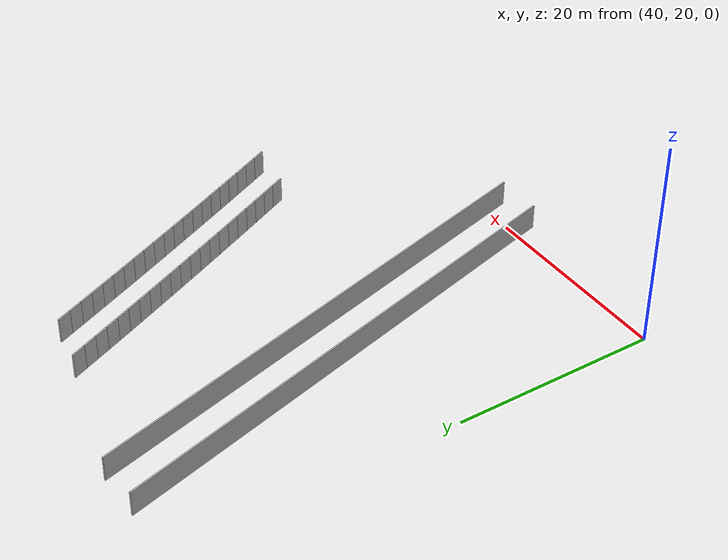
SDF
<sdf version="1.6">
 <model name="sps_0207">
  <static>1</static>
  <allow_auto_disable>0</allow_auto_disable>
  <link name="Wall271">
   <collision name="collision"><geometry><box><size>51.7473 0.15 2.5</size></box></geometry></collision>
   <visual name="visual">
    <geometry><box><size>51.7473 0.15 2.5</size></box></geometry>
    <transparency>0.0</transparency>
   </visual>
   <pose>56.7417 42.8931 1.25 0 -0 1.83141</pose>
  </link>
  <link name="Wall330">
   <collision name="collision"><geometry><box><size>51.7441 0.15 2.5</size></box></geometry></collision>
   <visual name="visual">
    <geometry><box><size>51.7441 0.15 2.5</size></box></geometry>
    <transparency>0.0</transparency>
   </visual>
   <pose>52.0647 42.8931 1.25 0 -0 1.83117</pose>
  </link>
  <link name="Wall8315">
   <collision name="collision"><geometry><box><size>1.49899 0.15 2.5</size></box></geometry></collision>
   <visual name="visual">
    <geometry><box><size>1.49899 0.15 2.5</size></box></geometry>
    <transparency>0.0</transparency>
   </visual>
   <pose>63.024 63.6397 1.25 0 0 -1.16029</pose>
  </link>
  <link name="Wall8316">
   <collision name="collision"><geometry><box><size>1.49899 0.15 2.5</size></box></geometry></collision>
   <visual name="visual">
    <geometry><box><size>1.49899 0.15 2.5</size></box></geometry>
    <transparency>0.0</transparency>
   </visual>
   <pose>63.6232 62.2657 1.25 0 0 -1.15887</pose>
  </link>
  <link name="Wall8317">
   <collision name="collision"><geometry><box><size>1.49894 0.15 2.5</size></box></geometry></collision>
   <visual name="visual">
    <geometry><box><size>1.49894 0.15 2.5</size></box></geometry>
    <transparency>0.0</transparency>
   </visual>
   <pose>64.2244 60.8926 1.25 0 0 -1.15721</pose>
  </link>
  <link name="Wall8318">
   <collision name="collision"><geometry><box><size>1.49899 0.15 2.5</size></box></geometry></collision>
   <visual name="visual">
    <geometry><box><size>1.49899 0.15 2.5</size></box></geometry>
    <transparency>0.0</transparency>
   </visual>
   <pose>64.828 59.5205 1.25 0 0 -1.15562</pose>
  </link>
  <link name="Wall8319">
   <collision name="collision"><geometry><box><size>1.49926 0.15 2.5</size></box></geometry></collision>
   <visual name="visual">
    <geometry><box><size>1.49926 0.15 2.5</size></box></geometry>
    <transparency>0.0</transparency>
   </visual>
   <pose>65.4337 58.1492 1.25 0 0 -1.1541</pose>
  </link>
  <link name="Wall8320">
   <collision name="collision"><geometry><box><size>1.4989 0.15 2.5</size></box></geometry></collision>
   <visual name="visual">
    <geometry><box><size>1.4989 0.15 2.5</size></box></geometry>
    <transparency>0.0</transparency>
   </visual>
   <pose>66.0416 56.7789 1.25 0 0 -1.15244</pose>
  </link>
  <link name="Wall8321">
   <collision name="collision"><geometry><box><size>1.49896 0.15 2.5</size></box></geometry></collision>
   <visual name="visual">
    <geometry><box><size>1.49896 0.15 2.5</size></box></geometry>
    <transparency>0.0</transparency>
   </visual>
   <pose>66.6515 55.4097 1.25 0 0 -1.15094</pose>
  </link>
  <link name="Wall8322">
   <collision name="collision"><geometry><box><size>1.49897 0.15 2.5</size></box></geometry></collision>
   <visual name="visual">
    <geometry><box><size>1.49897 0.15 2.5</size></box></geometry>
    <transparency>0.0</transparency>
   </visual>
   <pose>67.2637 54.0414 1.25 0 0 -1.14933</pose>
  </link>
  <link name="Wall8323">
   <collision name="collision"><geometry><box><size>1.49895 0.15 2.5</size></box></geometry></collision>
   <visual name="visual">
    <geometry><box><size>1.49895 0.15 2.5</size></box></geometry>
    <transparency>0.0</transparency>
   </visual>
   <pose>67.878 52.6741 1.25 0 0 -1.14777</pose>
  </link>
  <link name="Wall8324">
   <collision name="collision"><geometry><box><size>1.49886 0.15 2.5</size></box></geometry></collision>
   <visual name="visual">
    <geometry><box><size>1.49886 0.15 2.5</size></box></geometry>
    <transparency>0.0</transparency>
   </visual>
   <pose>68.4943 51.3078 1.25 0 0 -1.14622</pose>
  </link>
  <link name="Wall8325">
   <collision name="collision"><geometry><box><size>1.49895 0.15 2.5</size></box></geometry></collision>
   <visual name="visual">
    <geometry><box><size>1.49895 0.15 2.5</size></box></geometry>
    <transparency>0.0</transparency>
   </visual>
   <pose>69.113 49.9425 1.25 0 0 -1.14451</pose>
  </link>
  <link name="Wall8326">
   <collision name="collision"><geometry><box><size>1.49904 0.15 2.5</size></box></geometry></collision>
   <visual name="visual">
    <geometry><box><size>1.49904 0.15 2.5</size></box></geometry>
    <transparency>0.0</transparency>
   </visual>
   <pose>69.7338 48.5781 1.25 0 0 -1.1431</pose>
  </link>
  <link name="Wall8327">
   <collision name="collision"><geometry><box><size>1.49879 0.15 2.5</size></box></geometry></collision>
   <visual name="visual">
    <geometry><box><size>1.49879 0.15 2.5</size></box></geometry>
    <transparency>0.0</transparency>
   </visual>
   <pose>70.3566 47.2147 1.25 0 0 -1.1415</pose>
  </link>
  <link name="Wall8328">
   <collision name="collision"><geometry><box><size>1.49904 0.15 2.5</size></box></geometry></collision>
   <visual name="visual">
    <geometry><box><size>1.49904 0.15 2.5</size></box></geometry>
    <transparency>0.0</transparency>
   </visual>
   <pose>70.9816 45.8523 1.25 0 0 -1.13988</pose>
  </link>
  <link name="Wall8329">
   <collision name="collision"><geometry><box><size>1.49888 0.15 2.5</size></box></geometry></collision>
   <visual name="visual">
    <geometry><box><size>1.49888 0.15 2.5</size></box></geometry>
    <transparency>0.0</transparency>
   </visual>
   <pose>71.6088 44.4909 1.25 0 0 -1.13817</pose>
  </link>
  <link name="Wall8330">
   <collision name="collision"><geometry><box><size>1.49881 0.15 2.5</size></box></geometry></collision>
   <visual name="visual">
    <geometry><box><size>1.49881 0.15 2.5</size></box></geometry>
    <transparency>0.0</transparency>
   </visual>
   <pose>72.2382 43.1306 1.25 0 0 -1.13671</pose>
  </link>
  <link name="Wall8331">
   <collision name="collision"><geometry><box><size>1.49904 0.15 2.5</size></box></geometry></collision>
   <visual name="visual">
    <geometry><box><size>1.49904 0.15 2.5</size></box></geometry>
    <transparency>0.0</transparency>
   </visual>
   <pose>72.8697 41.7712 1.25 0 0 -1.13512</pose>
  </link>
  <link name="Wall8332">
   <collision name="collision"><geometry><box><size>1.49886 0.15 2.5</size></box></geometry></collision>
   <visual name="visual">
    <geometry><box><size>1.49886 0.15 2.5</size></box></geometry>
    <transparency>0.0</transparency>
   </visual>
   <pose>73.5035 40.4128 1.25 0 0 -1.13345</pose>
  </link>
  <link name="Wall8333">
   <collision name="collision"><geometry><box><size>1.49897 0.15 2.5</size></box></geometry></collision>
   <visual name="visual">
    <geometry><box><size>1.49897 0.15 2.5</size></box></geometry>
    <transparency>0.0</transparency>
   </visual>
   <pose>74.1393 39.0554 1.25 0 0 -1.13204</pose>
  </link>
  <link name="Wall8334">
   <collision name="collision"><geometry><box><size>1.49896 0.15 2.5</size></box></geometry></collision>
   <visual name="visual">
    <geometry><box><size>1.49896 0.15 2.5</size></box></geometry>
    <transparency>0.0</transparency>
   </visual>
   <pose>74.7773 37.699 1.25 0 0 -1.13024</pose>
  </link>
  <link name="Wall8335">
   <collision name="collision"><geometry><box><size>1.49903 0.15 2.5</size></box></geometry></collision>
   <visual name="visual">
    <geometry><box><size>1.49903 0.15 2.5</size></box></geometry>
    <transparency>0.0</transparency>
   </visual>
   <pose>75.4175 36.3436 1.25 0 0 -1.12882</pose>
  </link>
  <link name="Wall9398">
   <collision name="collision"><geometry><box><size>1.49241 0.15 2.5</size></box></geometry></collision>
   <visual name="visual">
    <geometry><box><size>1.49241 0.15 2.5</size></box></geometry>
    <transparency>0.0</transparency>
   </visual>
   <pose>68.0154 62.5568 1.25 0 0 -1.15721</pose>
  </link>
  <link name="Wall9399">
   <collision name="collision"><geometry><box><size>1.49233 0.15 2.5</size></box></geometry></collision>
   <visual name="visual">
    <geometry><box><size>1.49233 0.15 2.5</size></box></geometry>
    <transparency>0.0</transparency>
   </visual>
   <pose>68.6162 61.1907 1.25 0 0 -1.15571</pose>
  </link>
  <link name="Wall9400">
   <collision name="collision"><geometry><box><size>1.49256 0.15 2.5</size></box></geometry></collision>
   <visual name="visual">
    <geometry><box><size>1.49256 0.15 2.5</size></box></geometry>
    <transparency>0.0</transparency>
   </visual>
   <pose>69.2192 59.8255 1.25 0 0 -1.15404</pose>
  </link>
  <link name="Wall9401">
   <collision name="collision"><geometry><box><size>1.49273 0.15 2.5</size></box></geometry></collision>
   <visual name="visual">
    <geometry><box><size>1.49273 0.15 2.5</size></box></geometry>
    <transparency>0.0</transparency>
   </visual>
   <pose>69.8245 58.4611 1.25 0 0 -1.15248</pose>
  </link>
  <link name="Wall9402">
   <collision name="collision"><geometry><box><size>1.49243 0.15 2.5</size></box></geometry></collision>
   <visual name="visual">
    <geometry><box><size>1.49243 0.15 2.5</size></box></geometry>
    <transparency>0.0</transparency>
   </visual>
   <pose>70.4318 57.0977 1.25 0 0 -1.15091</pose>
  </link>
  <link name="Wall9403">
   <collision name="collision"><geometry><box><size>1.49231 0.15 2.5</size></box></geometry></collision>
   <visual name="visual">
    <geometry><box><size>1.49231 0.15 2.5</size></box></geometry>
    <transparency>0.0</transparency>
   </visual>
   <pose>71.0413 55.7354 1.25 0 0 -1.1494</pose>
  </link>
  <link name="Wall9404">
   <collision name="collision"><geometry><box><size>1.49237 0.15 2.5</size></box></geometry></collision>
   <visual name="visual">
    <geometry><box><size>1.49237 0.15 2.5</size></box></geometry>
    <transparency>0.0</transparency>
   </visual>
   <pose>71.6528 54.3741 1.25 0 0 -1.1478</pose>
  </link>
  <link name="Wall9405">
   <collision name="collision"><geometry><box><size>1.49233 0.15 2.5</size></box></geometry></collision>
   <visual name="visual">
    <geometry><box><size>1.49233 0.15 2.5</size></box></geometry>
    <transparency>0.0</transparency>
   </visual>
   <pose>72.2665 53.0138 1.25 0 0 -1.14617</pose>
  </link>
  <link name="Wall9406">
   <collision name="collision"><geometry><box><size>1.49229 0.15 2.5</size></box></geometry></collision>
   <visual name="visual">
    <geometry><box><size>1.49229 0.15 2.5</size></box></geometry>
    <transparency>0.0</transparency>
   </visual>
   <pose>72.8824 51.6545 1.25 0 0 -1.14454</pose>
  </link>
  <link name="Wall9407">
   <collision name="collision"><geometry><box><size>1.49254 0.15 2.5</size></box></geometry></collision>
   <visual name="visual">
    <geometry><box><size>1.49254 0.15 2.5</size></box></geometry>
    <transparency>0.0</transparency>
   </visual>
   <pose>73.5005 50.2961 1.25 0 0 -1.143</pose>
  </link>
  <link name="Wall9408">
   <collision name="collision"><geometry><box><size>1.4925 0.15 2.5</size></box></geometry></collision>
   <visual name="visual">
    <geometry><box><size>1.4925 0.15 2.5</size></box></geometry>
    <transparency>0.0</transparency>
   </visual>
   <pose>74.1208 48.9386 1.25 0 0 -1.14137</pose>
  </link>
  <link name="Wall9409">
   <collision name="collision"><geometry><box><size>1.49243 0.15 2.5</size></box></geometry></collision>
   <visual name="visual">
    <geometry><box><size>1.49243 0.15 2.5</size></box></geometry>
    <transparency>0.0</transparency>
   </visual>
   <pose>74.7432 47.5821 1.25 0 0 -1.13991</pose>
  </link>
  <link name="Wall9410">
   <collision name="collision"><geometry><box><size>1.49227 0.15 2.5</size></box></geometry></collision>
   <visual name="visual">
    <geometry><box><size>1.49227 0.15 2.5</size></box></geometry>
    <transparency>0.0</transparency>
   </visual>
   <pose>75.3676 46.2267 1.25 0 0 -1.13819</pose>
  </link>
  <link name="Wall9411">
   <collision name="collision"><geometry><box><size>1.49239 0.15 2.5</size></box></geometry></collision>
   <visual name="visual">
    <geometry><box><size>1.49239 0.15 2.5</size></box></geometry>
    <transparency>0.0</transparency>
   </visual>
   <pose>75.9943 44.8723 1.25 0 0 -1.13675</pose>
  </link>
  <link name="Wall9412">
   <collision name="collision"><geometry><box><size>1.49235 0.15 2.5</size></box></geometry></collision>
   <visual name="visual">
    <geometry><box><size>1.49235 0.15 2.5</size></box></geometry>
    <transparency>0.0</transparency>
   </visual>
   <pose>76.6229 43.5188 1.25 0 0 -1.13516</pose>
  </link>
  <link name="Wall9413">
   <collision name="collision"><geometry><box><size>1.49242 0.15 2.5</size></box></geometry></collision>
   <visual name="visual">
    <geometry><box><size>1.49242 0.15 2.5</size></box></geometry>
    <transparency>0.0</transparency>
   </visual>
   <pose>77.2538 42.1663 1.25 0 0 -1.13351</pose>
  </link>
  <link name="Wall9414">
   <collision name="collision"><geometry><box><size>1.49223 0.15 2.5</size></box></geometry></collision>
   <visual name="visual">
    <geometry><box><size>1.49223 0.15 2.5</size></box></geometry>
    <transparency>0.0</transparency>
   </visual>
   <pose>77.8869 40.8149 1.25 0 0 -1.13196</pose>
  </link>
  <link name="Wall9415">
   <collision name="collision"><geometry><box><size>1.49261 0.15 2.5</size></box></geometry></collision>
   <visual name="visual">
    <geometry><box><size>1.49261 0.15 2.5</size></box></geometry>
    <transparency>0.0</transparency>
   </visual>
   <pose>78.5221 39.4644 1.25 0 0 -1.13036</pose>
  </link>
  <link name="Wall9416">
   <collision name="collision"><geometry><box><size>1.49244 0.15 2.5</size></box></geometry></collision>
   <visual name="visual">
    <geometry><box><size>1.49244 0.15 2.5</size></box></geometry>
    <transparency>0.0</transparency>
   </visual>
   <pose>79.1594 38.1148 1.25 0 0 -1.12877</pose>
  </link>
  <link name="Wall9417">
   <collision name="collision"><geometry><box><size>1.4925 0.15 2.5</size></box></geometry></collision>
   <visual name="visual">
    <geometry><box><size>1.4925 0.15 2.5</size></box></geometry>
    <transparency>0.0</transparency>
   </visual>
   <pose>79.799 36.7663 1.25 0 0 -1.12716</pose>
  </link>
  <link name="Wall9418">
   <collision name="collision"><geometry><box><size>1.49241 0.15 2.5</size></box></geometry></collision>
   <visual name="visual">
    <geometry><box><size>1.49241 0.15 2.5</size></box></geometry>
    <transparency>0.0</transparency>
   </visual>
   <pose>80.4406 35.4188 1.25 0 0 -1.12568</pose>
  </link>
 </model>
</sdf>
